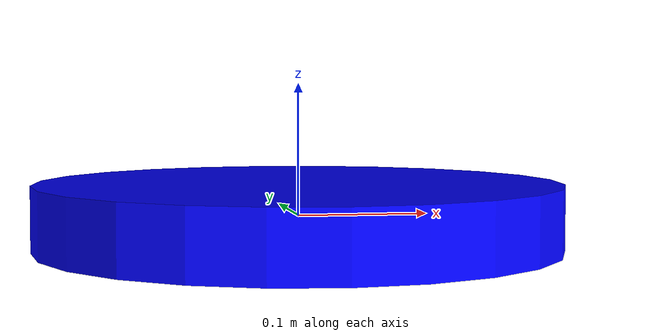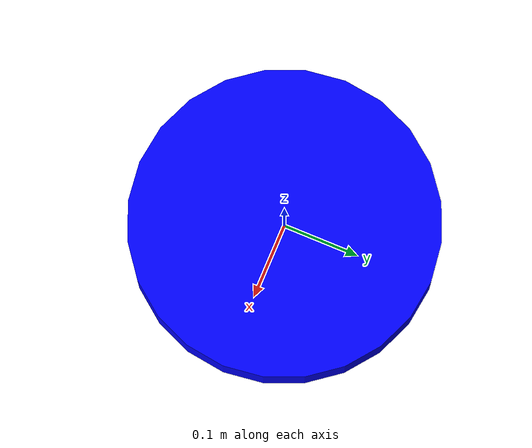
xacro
<robot xmlns:xacro="http://www.ros.org/wiki/xacro" name="supre_robot">

  <!-- Enable setting arguments from the launch file -->
  <xacro:arg name="use_mock_hardware" default="false" />
  <xacro:arg name="prefix_leader" default="leader_" />
  <xacro:arg name="prefix_follower" default="follower_" />
  <xacro:arg name="leader_param_can_device_index" default="0" />
  <xacro:arg name="leader_param_can_baud_rate" default="1000" />
  <xacro:arg name="leader_param_device" default="/dev/ttyTHS1" />
  <xacro:arg name="leader_param_baud_rate" default="115200" />
  <xacro:arg name="leader_param_max_stroke" default="0.04" />

  <xacro:arg name="follower_param_can_device_index" default="0" />
  <xacro:arg name="follower_param_can_baud_rate" default="1000" />
  <xacro:arg name="follower_param_device" default="/dev/ttyTHS1" />
  <xacro:arg name="follower_param_slave_id" default="10" />
  <xacro:arg name="follower_param_baud_rate" default="115200" />
  <xacro:arg name="follower_param_max_stroke" default="0.04" />

  <xacro:include filename="$(find supre_robot_control)/urdf/supre_robot_description.urdf.xacro"/>
  <!-- Import joints ros2_control description -->
  <xacro:include filename="$(find supre_robot_control)/ros2_control/joints.ros2_control.xacro"/>

  <!-- Import gripper description -->
  <xacro:include filename="$(find supre_robot_control)/ros2_control/gripper.ros2_control.xacro"/>

  <link name="world"/>

  <xacro:create_robot prefix="$(arg prefix_leader)">
  </xacro:create_robot>
  <xacro:create_robot prefix="$(arg prefix_follower)">
  </xacro:create_robot>

  <xacro:gripper_system
    name="LeaderMisumiGripper" prefix="$(arg prefix_leader)"
    use_mock_hardware="$(arg use_mock_hardware)"
    param_device="$(arg leader_param_device)"
    param_slave_id="$(arg leader_param_slave_id)"
    param_baud_rate="$(arg leader_param_baud_rate)"
    param_max_stroke="$(arg leader_param_max_stroke)" />

  <xacro:joints_system
    name="LeaderEyouSystem" prefix="$(arg prefix_leader)"
    use_mock_hardware="$(arg use_mock_hardware)"
    param_can_device_index="$(arg leader_param_can_device_index)"
    param_can_baud_rate="$(arg leader_param_can_baud_rate)" />

  <xacro:gripper_system
    name="FollowerMisumiGripper" prefix="$(arg prefix_follower)"
    use_mock_hardware="$(arg use_mock_hardware)"
    param_device="$(arg follower_param_device)"
    param_slave_id="$(arg follower_param_slave_id)"
    param_baud_rate="$(arg follower_param_baud_rate)"
    param_max_stroke="$(arg follower_param_max_stroke)" />

  <xacro:joints_system
    name="FollowerEyouSystem" prefix="$(arg prefix_follower)"
    use_mock_hardware="$(arg use_mock_hardware)"
    param_can_device_index="$(arg follower_param_can_device_index)"
    param_can_baud_rate="$(arg follower_param_can_baud_rate)" />
</robot>

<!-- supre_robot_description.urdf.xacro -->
<robot xmlns:xacro="http://www.ros.org/wiki/xacro">

  <xacro:macro name="create_robot" params="prefix">
    <!-- Used for fixing robot to Gazebo 'world' -->

    <joint name="${prefix}base_joint" type="fixed">
        <parent link="world"/>
        <child link="${prefix}base_link"/>
        <origin xyz="0 0 0" rpy="0 0 0"/>
    </joint>

    <link name="${prefix}base_link">
        <visual>
            <geometry>
                <cylinder length="0.05" radius="0.2"/>
            </geometry>
            <material name="blue">
                <color rgba="0.0 0.0 1.0 1.0"/>
            </material>
        </visual>
        <collision>
            <geometry>
                <cylinder length="0.05" radius="0.2"/>
            </geometry>
        </collision>
    </link>

    <link name="${prefix}gripper_finger_link">
        <visual>
            <geometry>
                <box size="0.1 0.02 0.02"/>
            </geometry>
        </visual>
        <collision>
            <geometry>
                <box size="0.1 0.02 0.02"/>
            </geometry>
        </collision>
        <inertial>
            <mass value="0.1"/>
            <inertia ixx="0.001" ixy="0" ixz="0" iyy="0.001" iyz="0" izz="0.001"/>
        </inertial>
    </link>

    <joint name="${prefix}gripper_joint" type="prismatic">
        <parent link="${prefix}base_link"/>
        <child link="${prefix}gripper_finger_link"/>
        <origin xyz="0 0 0" rpy="0 0 0"/>
        <axis xyz="1 0 0"/>
        <limit lower="0.0" upper="0.025" effort="100" velocity="0.5"/>
    </joint>
  </xacro:macro>

</robot>
